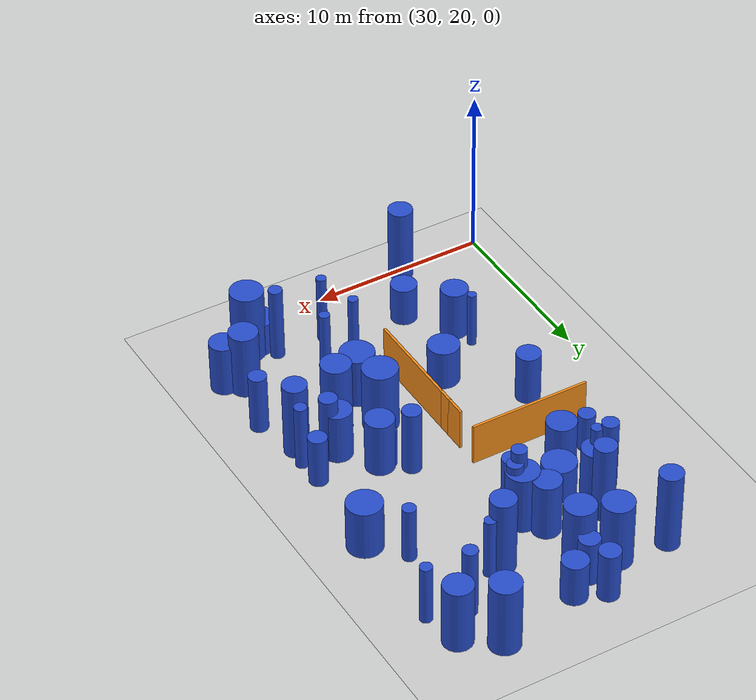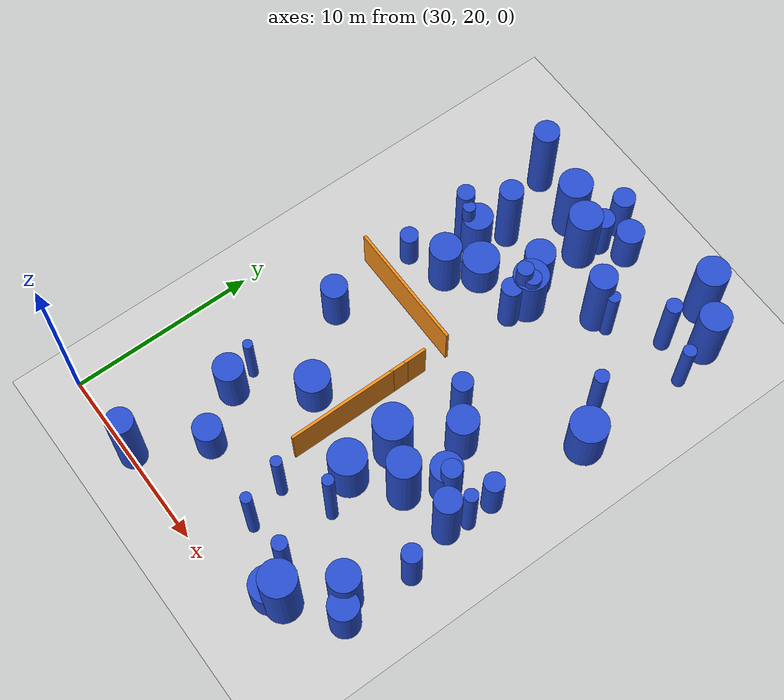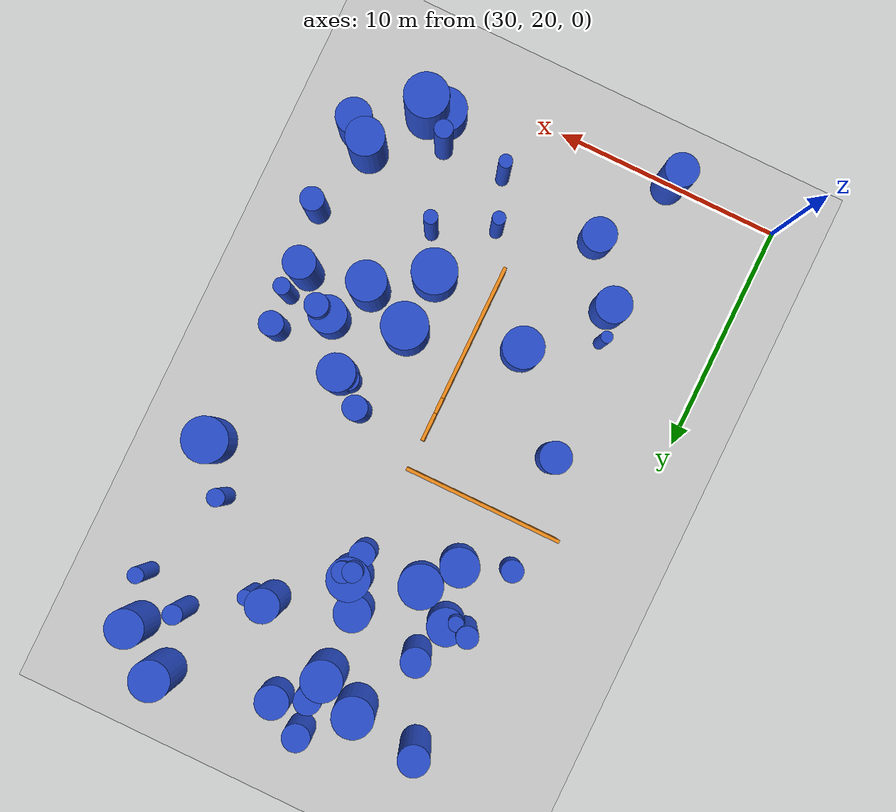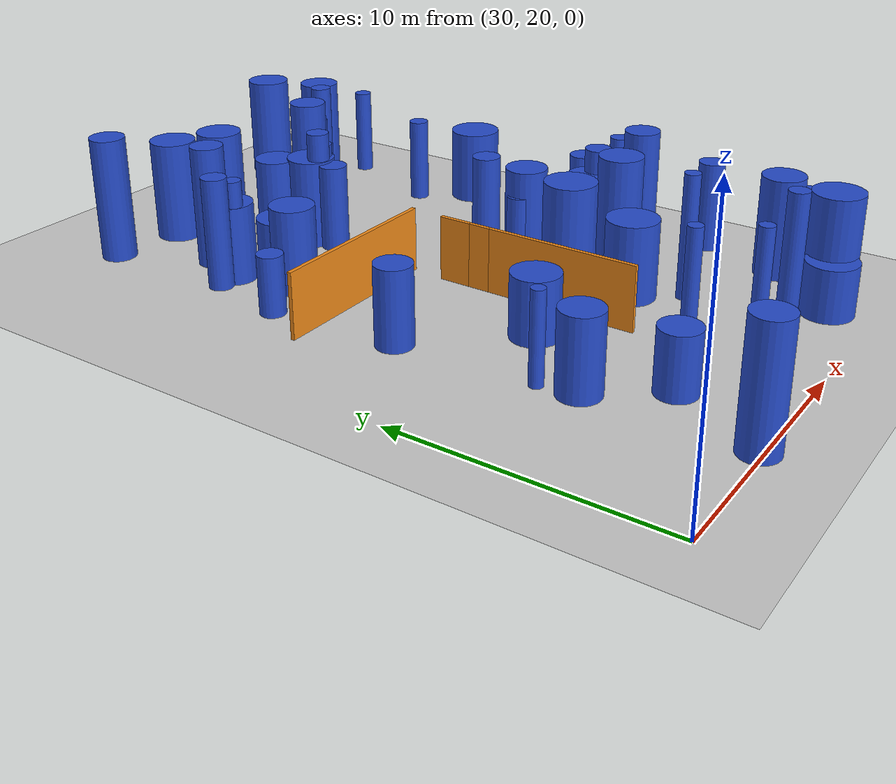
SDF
<sdf version="1.6">
 <world name="default">
  <model name="ground_plane">
   <static>1</static>
   <link name="link">
    <collision name="collision">
     <geometry><plane><normal>0 0 1</normal><size>100 100</size></plane></geometry>
     <surface><friction><ode><mu>100</mu><mu2>50</mu2></ode></friction></surface>
    </collision>
    <visual name="visual">
     <cast_shadows>0</cast_shadows>
     <geometry><plane><normal>0 0 1</normal><size>100 100</size></plane></geometry>
     <material>
      <script><uri>file://media/materials/scripts/gazebo.material</uri><name>Gazebo/Grey</name></script>
     </material>
    </visual>
   </link>
  </model>
  <model name="4">
   <static>0</static>
   <link name="link">
    <inertial>
     <mass>2</mass>
     <inertia>
      <ixx>0.982627</ixx>
      <ixy>0</ixy>
      <ixz>0</ixz>
      <iyy>0.982627</iyy>
      <iyz>0</iyz>
      <izz>0.248096</izz>
     </inertia>
    </inertial>
    <collision name="collision">
     <geometry><cylinder><length>2.26969</length><radius>0.498092</radius></cylinder></geometry>
     <surface><contact><collide_without_contact>1</collide_without_contact></contact></surface>
    </collision>
    <visual name="visual">
     <geometry><cylinder><length>2.26969</length><radius>0.498092</radius></cylinder></geometry>
     <material>
      <script><uri>file://media/materials/scripts/gazebo.material</uri><name>Gazebo/Blue</name></script>
     </material>
    </visual>
    <gravity>0</gravity>
   </link>
   <pose>43.5504 33.5469 1.13484 0 -0 0</pose>
  </model>
  <model name="7">
   <static>0</static>
   <link name="link">
    <inertial>
     <mass>2</mass>
     <inertia><ixx>3.06232</ixx><ixy>0</ixy><ixz>0</ixz><iyy>3.06232</iyy><iyz>0</iyz><izz>0.178257</izz></inertia>
    </inertial>
    <collision name="collision">
     <geometry><cylinder><length>4.22364</length><radius>0.422205</radius></cylinder></geometry>
     <surface><contact><collide_without_contact>1</collide_without_contact></contact></surface>
    </collision>
    <visual name="visual">
     <geometry><cylinder><length>4.22364</length><radius>0.422205</radius></cylinder></geometry>
     <material>
      <script><uri>file://media/materials/scripts/gazebo.material</uri><name>Gazebo/Blue</name></script>
     </material>
    </visual>
    <gravity>0</gravity>
   </link>
   <pose>45.6162 45.1561 2.11182 0 -0 0</pose>
  </model>
  <model name="17">
   <static>0</static>
   <link name="link">
    <inertial>
     <mass>2</mass>
     <inertia><ixx>4.11336</ixx><ixy>0</ixy><ixz>0</ixz><iyy>4.11336</iyy><iyz>0</iyz><izz>0.443854</izz></inertia>
    </inertial>
    <collision name="collision">
     <geometry><cylinder><length>4.83204</length><radius>0.666223</radius></cylinder></geometry>
     <surface><contact><collide_without_contact>1</collide_without_contact></contact></surface>
    </collision>
    <visual name="visual">
     <geometry><cylinder><length>4.83204</length><radius>0.666223</radius></cylinder></geometry>
     <material>
      <script><uri>file://media/materials/scripts/gazebo.material</uri><name>Gazebo/Blue</name></script>
     </material>
    </visual>
    <gravity>0</gravity>
   </link>
   <pose>34.3973 46.1199 2.41602 0 -0 0</pose>
  </model>
  <model name="19">
   <static>0</static>
   <link name="link">
    <inertial>
     <mass>2</mass>
     <inertia><ixx>1.7024</ixx><ixy>0</ixy><ixz>0</ixz><iyy>1.7024</iyy><iyz>0</iyz><izz>0.35835</izz></inertia>
    </inertial>
    <collision name="collision">
     <geometry><cylinder><length>3.02313</length><radius>0.598624</radius></cylinder></geometry>
     <surface><contact><collide_without_contact>1</collide_without_contact></contact></surface>
    </collision>
    <visual name="visual">
     <geometry><cylinder><length>3.02313</length><radius>0.598624</radius></cylinder></geometry>
     <material>
      <script><uri>file://media/materials/scripts/gazebo.material</uri><name>Gazebo/Blue</name></script>
     </material>
    </visual>
    <gravity>0</gravity>
   </link>
   <pose>39.0269 47.6818 1.51157 0 -0 0</pose>
  </model>
  <model name="22">
   <static>0</static>
   <link name="link">
    <inertial>
     <mass>2</mass>
     <inertia><ixx>1.74504</ixx><ixy>0</ixy><ixz>0</ixz><iyy>1.74504</iyy><iyz>0</iyz><izz>0.480682</izz></inertia>
    </inertial>
    <collision name="collision">
     <geometry><cylinder><length>3.00469</length><radius>0.693313</radius></cylinder></geometry>
     <surface><contact><collide_without_contact>1</collide_without_contact></contact></surface>
    </collision>
    <visual name="visual">
     <geometry><cylinder><length>3.00469</length><radius>0.693313</radius></cylinder></geometry>
     <material>
      <script><uri>file://media/materials/scripts/gazebo.material</uri><name>Gazebo/Blue</name></script>
     </material>
    </visual>
    <gravity>0</gravity>
   </link>
   <pose>34.3942 32.773 1.50235 0 -0 0</pose>
  </model>
  <model name="25">
   <static>0</static>
   <link name="link">
    <inertial>
     <mass>2</mass>
     <inertia><ixx>2.7316</ixx><ixy>0</ixy><ixz>0</ixz><iyy>2.7316</iyy><iyz>0</iyz><izz>0.105322</izz></inertia>
    </inertial>
    <collision name="collision">
     <geometry><cylinder><length>4.00919</length><radius>0.324534</radius></cylinder></geometry>
     <surface><contact><collide_without_contact>1</collide_without_contact></contact></surface>
    </collision>
    <visual name="visual">
     <geometry><cylinder><length>4.00919</length><radius>0.324534</radius></cylinder></geometry>
     <material>
      <script><uri>file://media/materials/scripts/gazebo.material</uri><name>Gazebo/Blue</name></script>
     </material>
    </visual>
    <gravity>0</gravity>
   </link>
   <pose>35.1952 40.577 2.0046 0 -0 0</pose>
  </model>
  <model name="27">
   <static>0</static>
   <link name="link">
    <inertial>
     <mass>2</mass>
     <inertia><ixx>3.49238</ixx><ixy>0</ixy><ixz>0</ixz><iyy>3.49238</iyy><iyz>0</iyz><izz>0.155393</izz></inertia>
    </inertial>
    <collision name="collision">
     <geometry><cylinder><length>4.52638</length><radius>0.394199</radius></cylinder></geometry>
     <surface><contact><collide_without_contact>1</collide_without_contact></contact></surface>
    </collision>
    <visual name="visual">
     <geometry><cylinder><length>4.52638</length><radius>0.394199</radius></cylinder></geometry>
     <material>
      <script><uri>file://media/materials/scripts/gazebo.material</uri><name>Gazebo/Blue</name></script>
     </material>
    </visual>
    <gravity>0</gravity>
   </link>
   <pose>44.2707 22.8518 2.26319 0 -0 0</pose>
  </model>
  <model name="31">
   <static>0</static>
   <link name="link">
    <inertial>
     <mass>2</mass>
     <inertia>
      <ixx>2.64859</ixx>
      <ixy>0</ixy>
      <ixz>0</ixz>
      <iyy>2.64859</iyy>
      <iyz>0</iyz>
      <izz>0.0843179</izz>
     </inertia>
    </inertial>
    <collision name="collision">
     <geometry><cylinder><length>3.95456</length><radius>0.290376</radius></cylinder></geometry>
     <surface><contact><collide_without_contact>1</collide_without_contact></contact></surface>
    </collision>
    <visual name="visual">
     <geometry><cylinder><length>3.95456</length><radius>0.290376</radius></cylinder></geometry>
     <material>
      <script><uri>file://media/materials/scripts/gazebo.material</uri><name>Gazebo/Blue</name></script>
     </material>
    </visual>
    <gravity>0</gravity>
   </link>
   <pose>40.7251 25.0415 1.97728 0 -0 0</pose>
  </model>
  <model name="32">
   <static>0</static>
   <link name="link">
    <inertial>
     <mass>2</mass>
     <inertia><ixx>1.31359</ixx><ixy>0</ixy><ixz>0</ixz><iyy>1.31359</iyy><iyz>0</iyz><izz>0.534164</izz></inertia>
    </inertial>
    <collision name="collision">
     <geometry><cylinder><length>2.5058</length><radius>0.730865</radius></cylinder></geometry>
     <surface><contact><collide_without_contact>1</collide_without_contact></contact></surface>
    </collision>
    <visual name="visual">
     <geometry><cylinder><length>2.5058</length><radius>0.730865</radius></cylinder></geometry>
     <material>
      <script><uri>file://media/materials/scripts/gazebo.material</uri><name>Gazebo/Blue</name></script>
     </material>
    </visual>
    <gravity>0</gravity>
   </link>
   <pose>40.5633 46.9048 1.2529 0 -0 0</pose>
  </model>
  <model name="38">
   <static>0</static>
   <link name="link">
    <inertial>
     <mass>2</mass>
     <inertia><ixx>1.64312</ixx><ixy>0</ixy><ixz>0</ixz><iyy>1.64312</iyy><iyz>0</iyz><izz>0.283464</izz></inertia>
    </inertial>
    <collision name="collision">
     <geometry><cylinder><length>3.00139</length><radius>0.532413</radius></cylinder></geometry>
     <surface><contact><collide_without_contact>1</collide_without_contact></contact></surface>
    </collision>
    <visual name="visual">
     <geometry><cylinder><length>3.00139</length><radius>0.532413</radius></cylinder></geometry>
     <material>
      <script><uri>file://media/materials/scripts/gazebo.material</uri><name>Gazebo/Blue</name></script>
     </material>
    </visual>
    <gravity>0</gravity>
   </link>
   <pose>47.3246 32.8651 1.50069 0 -0 0</pose>
  </model>
  <model name="41">
   <static>0</static>
   <link name="link">
    <inertial>
     <mass>2</mass>
     <inertia><ixx>2.97421</ixx><ixy>0</ixy><ixz>0</ixz><iyy>2.97421</iyy><iyz>0</iyz><izz>0.995933</izz></inertia>
    </inertial>
    <collision name="collision">
     <geometry><cylinder><length>3.85453</length><radius>0.997964</radius></cylinder></geometry>
     <surface><contact><collide_without_contact>1</collide_without_contact></contact></surface>
    </collision>
    <visual name="visual">
     <geometry><cylinder><length>3.85453</length><radius>0.997964</radius></cylinder></geometry>
     <material>
      <script><uri>file://media/materials/scripts/gazebo.material</uri><name>Gazebo/Blue</name></script>
     </material>
    </visual>
    <gravity>0</gravity>
   </link>
   <pose>42.2861 30.6272 1.92727 0 -0 0</pose>
  </model>
  <model name="42">
   <static>0</static>
   <link name="link">
    <inertial>
     <mass>2</mass>
     <inertia><ixx>3.1498</ixx><ixy>0</ixy><ixz>0</ixz><iyy>3.1498</iyy><iyz>0</iyz><izz>0.22395</izz></inertia>
    </inertial>
    <collision name="collision">
     <geometry><cylinder><length>4.26931</length><radius>0.473233</radius></cylinder></geometry>
     <surface><contact><collide_without_contact>1</collide_without_contact></contact></surface>
    </collision>
    <visual name="visual">
     <geometry><cylinder><length>4.26931</length><radius>0.473233</radius></cylinder></geometry>
     <material>
      <script><uri>file://media/materials/scripts/gazebo.material</uri><name>Gazebo/Blue</name></script>
     </material>
    </visual>
    <gravity>0</gravity>
   </link>
   <pose>34.5611 40.8487 2.13465 0 -0 0</pose>
  </model>
  <model name="45">
   <static>0</static>
   <link name="link">
    <inertial>
     <mass>2</mass>
     <inertia><ixx>2.26148</ixx><ixy>0</ixy><ixz>0</ixz><iyy>2.26148</iyy><iyz>0</iyz><izz>0.620996</izz></inertia>
    </inertial>
    <collision name="collision">
     <geometry><cylinder><length>3.42138</length><radius>0.788033</radius></cylinder></geometry>
     <surface><contact><collide_without_contact>1</collide_without_contact></contact></surface>
    </collision>
    <visual name="visual">
     <geometry><cylinder><length>3.42138</length><radius>0.788033</radius></cylinder></geometry>
     <material>
      <script><uri>file://media/materials/scripts/gazebo.material</uri><name>Gazebo/Blue</name></script>
     </material>
    </visual>
    <gravity>0</gravity>
   </link>
   <pose>39.1491 42.0776 1.71069 0 -0 0</pose>
  </model>
  <model name="54">
   <static>0</static>
   <link name="link">
    <inertial>
     <mass>2</mass>
     <inertia><ixx>1.37638</ixx><ixy>0</ixy><ixz>0</ixz><iyy>1.37638</iyy><iyz>0</iyz><izz>0.821688</izz></inertia>
    </inertial>
    <collision name="collision">
     <geometry><cylinder><length>2.40691</length><radius>0.90647</radius></cylinder></geometry>
     <surface><contact><collide_without_contact>1</collide_without_contact></contact></surface>
    </collision>
    <visual name="visual">
     <geometry><cylinder><length>2.40691</length><radius>0.90647</radius></cylinder></geometry>
     <material>
      <script><uri>file://media/materials/scripts/gazebo.material</uri><name>Gazebo/Blue</name></script>
     </material>
    </visual>
    <gravity>0</gravity>
   </link>
   <pose>37.5395 29.2145 1.20345 0 -0 0</pose>
  </model>
  <model name="56">
   <static>0</static>
   <link name="link">
    <inertial>
     <mass>2</mass>
     <inertia><ixx>1.44199</ixx><ixy>0</ixy><ixz>0</ixz><iyy>1.44199</iyy><iyz>0</iyz><izz>0.351917</izz></inertia>
    </inertial>
    <collision name="collision">
     <geometry><cylinder><length>2.75612</length><radius>0.593226</radius></cylinder></geometry>
     <surface><contact><collide_without_contact>1</collide_without_contact></contact></surface>
    </collision>
    <visual name="visual">
     <geometry><cylinder><length>2.75612</length><radius>0.593226</radius></cylinder></geometry>
     <material>
      <script><uri>file://media/materials/scripts/gazebo.material</uri><name>Gazebo/Blue</name></script>
     </material>
    </visual>
    <gravity>0</gravity>
   </link>
   <pose>39.2574 46.1786 1.37806 0 -0 0</pose>
  </model>
  <model name="61">
   <static>0</static>
   <link name="link">
    <inertial>
     <mass>2</mass>
     <inertia><ixx>3.67295</ixx><ixy>0</ixy><ixz>0</ixz><iyy>3.67295</iyy><iyz>0</iyz><izz>0.479823</izz></inertia>
    </inertial>
    <collision name="collision">
     <geometry><cylinder><length>4.53853</length><radius>0.692692</radius></cylinder></geometry>
     <surface><contact><collide_without_contact>1</collide_without_contact></contact></surface>
    </collision>
    <visual name="visual">
     <geometry><cylinder><length>4.53853</length><radius>0.692692</radius></cylinder></geometry>
     <material>
      <script><uri>file://media/materials/scripts/gazebo.material</uri><name>Gazebo/Blue</name></script>
     </material>
    </visual>
    <gravity>0</gravity>
   </link>
   <pose>47.1633 30.2094 2.26926 0 -0 0</pose>
  </model>
  <model name="62">
   <static>0</static>
   <link name="link">
    <inertial>
     <mass>2</mass>
     <inertia><ixx>1.99738</ixx><ixy>0</ixy><ixz>0</ixz><iyy>1.99738</iyy><iyz>0</iyz><izz>0.149019</izz></inertia>
    </inertial>
    <collision name="collision">
     <geometry><cylinder><length>3.39665</length><radius>0.38603</radius></cylinder></geometry>
     <surface><contact><collide_without_contact>1</collide_without_contact></contact></surface>
    </collision>
    <visual name="visual">
     <geometry><cylinder><length>3.39665</length><radius>0.38603</radius></cylinder></geometry>
     <material>
      <script><uri>file://media/materials/scripts/gazebo.material</uri><name>Gazebo/Blue</name></script>
     </material>
    </visual>
    <gravity>0</gravity>
   </link>
   <pose>46.2021 40.252 1.69832 0 -0 0</pose>
  </model>
  <model name="64">
   <static>0</static>
   <link name="link">
    <inertial>
     <mass>2</mass>
     <inertia><ixx>3.05171</ixx><ixy>0</ixy><ixz>0</ixz><iyy>3.05171</iyy><iyz>0</iyz><izz>0.774554</izz></inertia>
    </inertial>
    <collision name="collision">
     <geometry><cylinder><length>3.99833</length><radius>0.880087</radius></cylinder></geometry>
     <surface><contact><collide_without_contact>1</collide_without_contact></contact></surface>
    </collision>
    <visual name="visual">
     <geometry><cylinder><length>3.99833</length><radius>0.880087</radius></cylinder></geometry>
     <material>
      <script><uri>file://media/materials/scripts/gazebo.material</uri><name>Gazebo/Blue</name></script>
     </material>
    </visual>
    <gravity>0</gravity>
   </link>
   <pose>39.071 44.9999 1.99916 0 -0 0</pose>
  </model>
  <model name="70">
   <static>0</static>
   <link name="link">
    <inertial>
     <mass>2</mass>
     <inertia><ixx>3.66577</ixx><ixy>0</ixy><ixz>0</ixz><iyy>3.66577</iyy><iyz>0</iyz><izz>0.497393</izz></inertia>
    </inertial>
    <collision name="collision">
     <geometry><cylinder><length>4.52796</length><radius>0.705261</radius></cylinder></geometry>
     <surface><contact><collide_without_contact>1</collide_without_contact></contact></surface>
    </collision>
    <visual name="visual">
     <geometry><cylinder><length>4.52796</length><radius>0.705261</radius></cylinder></geometry>
     <material>
      <script><uri>file://media/materials/scripts/gazebo.material</uri><name>Gazebo/Blue</name></script>
     </material>
    </visual>
    <gravity>0</gravity>
   </link>
   <pose>34.9107 20.1823 2.26398 0 -0 0</pose>
  </model>
  <model name="76">
   <static>0</static>
   <link name="link">
    <inertial>
     <mass>2</mass>
     <inertia>
      <ixx>3.85305</ixx>
      <ixy>0</ixy>
      <ixz>0</ixz>
      <iyy>3.85305</iyy>
      <iyz>0</iyz>
      <izz>0.0917923</izz>
     </inertia>
    </inertial>
    <collision name="collision">
     <geometry><cylinder><length>4.77943</length><radius>0.302972</radius></cylinder></geometry>
     <surface><contact><collide_without_contact>1</collide_without_contact></contact></surface>
    </collision>
    <visual name="visual">
     <geometry><cylinder><length>4.77943</length><radius>0.302972</radius></cylinder></geometry>
     <material>
      <script><uri>file://media/materials/scripts/gazebo.material</uri><name>Gazebo/Blue</name></script>
     </material>
    </visual>
    <gravity>0</gravity>
   </link>
   <pose>43.1827 26.3124 2.38971 0 -0 0</pose>
  </model>
  <model name="80">
   <static>0</static>
   <link name="link">
    <inertial>
     <mass>2</mass>
     <inertia><ixx>3.9002</ixx><ixy>0</ixy><ixz>0</ixz><iyy>3.9002</iyy><iyz>0</iyz><izz>0.386485</izz></inertia>
    </inertial>
    <collision name="collision">
     <geometry><cylinder><length>4.71611</length><radius>0.621679</radius></cylinder></geometry>
     <surface><contact><collide_without_contact>1</collide_without_contact></contact></surface>
    </collision>
    <visual name="visual">
     <geometry><cylinder><length>4.71611</length><radius>0.621679</radius></cylinder></geometry>
     <material>
      <script><uri>file://media/materials/scripts/gazebo.material</uri><name>Gazebo/Blue</name></script>
     </material>
    </visual>
    <gravity>0</gravity>
   </link>
   <pose>36.0171 42.5943 2.35806 0 -0 0</pose>
  </model>
  <model name="83">
   <static>0</static>
   <link name="link">
    <inertial>
     <mass>2</mass>
     <inertia><ixx>1.1459</ixx><ixy>0</ixy><ixz>0</ixz><iyy>1.1459</iyy><iyz>0</iyz><izz>0.941021</izz></inertia>
    </inertial>
    <collision name="collision">
     <geometry><cylinder><length>2.01304</length><radius>0.970062</radius></cylinder></geometry>
     <surface><contact><collide_without_contact>1</collide_without_contact></contact></surface>
    </collision>
    <visual name="visual">
     <geometry><cylinder><length>2.01304</length><radius>0.970062</radius></cylinder></geometry>
     <material>
      <script><uri>file://media/materials/scripts/gazebo.material</uri><name>Gazebo/Blue</name></script>
     </material>
    </visual>
    <gravity>0</gravity>
   </link>
   <pose>44.8178 21.6069 1.00652 0 -0 0</pose>
  </model>
  <model name="84">
   <static>0</static>
   <link name="link">
    <inertial>
     <mass>2</mass>
     <inertia><ixx>1.19616</ixx><ixy>0</ixy><ixz>0</ixz><iyy>1.19616</iyy><iyz>0</iyz><izz>0.933302</izz></inertia>
    </inertial>
    <collision name="collision">
     <geometry><cylinder><length>2.09214</length><radius>0.966076</radius></cylinder></geometry>
     <surface><contact><collide_without_contact>1</collide_without_contact></contact></surface>
    </collision>
    <visual name="visual">
     <geometry><cylinder><length>2.09214</length><radius>0.966076</radius></cylinder></geometry>
     <material>
      <script><uri>file://media/materials/scripts/gazebo.material</uri><name>Gazebo/Blue</name></script>
     </material>
    </visual>
    <gravity>0</gravity>
   </link>
   <pose>37.0807 40.0005 1.04607 0 -0 0</pose>
  </model>
  <model name="86">
   <static>0</static>
   <link name="link">
    <inertial>
     <mass>2</mass>
     <inertia><ixx>3.85061</ixx><ixy>0</ixy><ixz>0</ixz><iyy>3.85061</iyy><iyz>0</iyz><izz>0.518978</izz></inertia>
    </inertial>
    <collision name="collision">
     <geometry><cylinder><length>4.64185</length><radius>0.720401</radius></cylinder></geometry>
     <surface><contact><collide_without_contact>1</collide_without_contact></contact></surface>
    </collision>
    <visual name="visual">
     <geometry><cylinder><length>4.64185</length><radius>0.720401</radius></cylinder></geometry>
     <material>
      <script><uri>file://media/materials/scripts/gazebo.material</uri><name>Gazebo/Blue</name></script>
     </material>
    </visual>
    <gravity>0</gravity>
   </link>
   <pose>42.5024 43.2263 2.32092 0 -0 0</pose>
  </model>
  <model name="95">
   <static>0</static>
   <link name="link">
    <inertial>
     <mass>2</mass>
     <inertia>
      <ixx>0.985771</ixx>
      <ixy>0</ixy>
      <ixz>0</ixz>
      <iyy>0.985771</iyy>
      <iyz>0</iyz>
      <izz>0.233893</izz>
     </inertia>
    </inertial>
    <collision name="collision">
     <geometry><cylinder><length>2.28319</length><radius>0.483625</radius></cylinder></geometry>
     <surface><contact><collide_without_contact>1</collide_without_contact></contact></surface>
    </collision>
    <visual name="visual">
     <geometry><cylinder><length>2.28319</length><radius>0.483625</radius></cylinder></geometry>
     <material>
      <script><uri>file://media/materials/scripts/gazebo.material</uri><name>Gazebo/Blue</name></script>
     </material>
    </visual>
    <gravity>0</gravity>
   </link>
   <pose>33.9366 37.7681 1.14159 0 -0 0</pose>
  </model>
  <model name="97">
   <static>0</static>
   <link name="link">
    <inertial>
     <mass>2</mass>
     <inertia><ixx>1.88861</ixx><ixy>0</ixy><ixz>0</ixz><iyy>1.88861</iyy><iyz>0</iyz><izz>0.605954</izz></inertia>
    </inertial>
    <collision name="collision">
     <geometry><cylinder><length>3.08444</length><radius>0.778431</radius></cylinder></geometry>
     <surface><contact><collide_without_contact>1</collide_without_contact></contact></surface>
    </collision>
    <visual name="visual">
     <geometry><cylinder><length>3.08444</length><radius>0.778431</radius></cylinder></geometry>
     <material>
      <script><uri>file://media/materials/scripts/gazebo.material</uri><name>Gazebo/Blue</name></script>
     </material>
    </visual>
    <gravity>0</gravity>
   </link>
   <pose>47.974 23.6926 1.54222 0 -0 0</pose>
  </model>
  <model name="98">
   <static>0</static>
   <link name="link">
    <inertial>
     <mass>2</mass>
     <inertia><ixx>1.86574</ixx><ixy>0</ixy><ixz>0</ixz><iyy>1.86574</iyy><iyz>0</iyz><izz>0.667431</izz></inertia>
    </inertial>
    <collision name="collision">
     <geometry><cylinder><length>3.03186</length><radius>0.816965</radius></cylinder></geometry>
     <surface><contact><collide_without_contact>1</collide_without_contact></contact></surface>
    </collision>
    <visual name="visual">
     <geometry><cylinder><length>3.03186</length><radius>0.816965</radius></cylinder></geometry>
     <material>
      <script><uri>file://media/materials/scripts/gazebo.material</uri><name>Gazebo/Blue</name></script>
     </material>
    </visual>
    <gravity>0</gravity>
   </link>
   <pose>45.397 31.5197 1.51593 0 -0 0</pose>
  </model>
  <model name="105">
   <static>0</static>
   <link name="link">
    <inertial>
     <mass>2</mass>
     <inertia><ixx>2.88866</ixx><ixy>0</ixy><ixz>0</ixz><iyy>2.88866</iyy><iyz>0</iyz><izz>0.686861</izz></inertia>
    </inertial>
    <collision name="collision">
     <geometry><cylinder><length>3.90786</length><radius>0.828771</radius></cylinder></geometry>
     <surface><contact><collide_without_contact>1</collide_without_contact></contact></surface>
    </collision>
    <visual name="visual">
     <geometry><cylinder><length>3.90786</length><radius>0.828771</radius></cylinder></geometry>
     <material>
      <script><uri>file://media/materials/scripts/gazebo.material</uri><name>Gazebo/Blue</name></script>
     </material>
    </visual>
    <gravity>0</gravity>
   </link>
   <pose>47.0756 24.3872 1.95393 0 -0 0</pose>
  </model>
  <model name="106">
   <static>0</static>
   <link name="link">
    <inertial>
     <mass>2</mass>
     <inertia><ixx>2.19954</ixx><ixy>0</ixy><ixz>0</ixz><iyy>2.19954</iyy><iyz>0</iyz><izz>0.11993</izz></inertia>
    </inertial>
    <collision name="collision">
     <geometry><cylinder><length>3.58294</length><radius>0.346309</radius></cylinder></geometry>
     <surface><contact><collide_without_contact>1</collide_without_contact></contact></surface>
    </collision>
    <visual name="visual">
     <geometry><cylinder><length>3.58294</length><radius>0.346309</radius></cylinder></geometry>
     <material>
      <script><uri>file://media/materials/scripts/gazebo.material</uri><name>Gazebo/Blue</name></script>
     </material>
    </visual>
    <gravity>0</gravity>
   </link>
   <pose>47.7338 44.4726 1.79147 0 -0 0</pose>
  </model>
  <model name="110">
   <static>0</static>
   <link name="link">
    <inertial>
     <mass>2</mass>
     <inertia><ixx>2.75029</ixx><ixy>0</ixy><ixz>0</ixz><iyy>2.75029</iyy><iyz>0</iyz><izz>0.287407</izz></inertia>
    </inertial>
    <collision name="collision">
     <geometry><cylinder><length>3.95468</length><radius>0.536104</radius></cylinder></geometry>
     <surface><contact><collide_without_contact>1</collide_without_contact></contact></surface>
    </collision>
    <visual name="visual">
     <geometry><cylinder><length>3.95468</length><radius>0.536104</radius></cylinder></geometry>
     <material>
      <script><uri>file://media/materials/scripts/gazebo.material</uri><name>Gazebo/Blue</name></script>
     </material>
    </visual>
    <gravity>0</gravity>
   </link>
   <pose>42.6495 34.504 1.97734 0 -0 0</pose>
  </model>
  <model name="114">
   <static>0</static>
   <link name="link">
    <inertial>
     <mass>2</mass>
     <inertia><ixx>2.29436</ixx><ixy>0</ixy><ixz>0</ixz><iyy>2.29436</iyy><iyz>0</iyz><izz>0.108501</izz></inertia>
    </inertial>
    <collision name="collision">
     <geometry><cylinder><length>3.66615</length><radius>0.329394</radius></cylinder></geometry>
     <surface><contact><collide_without_contact>1</collide_without_contact></contact></surface>
    </collision>
    <visual name="visual">
     <geometry><cylinder><length>3.66615</length><radius>0.329394</radius></cylinder></geometry>
     <material>
      <script><uri>file://media/materials/scripts/gazebo.material</uri><name>Gazebo/Blue</name></script>
     </material>
    </visual>
    <gravity>0</gravity>
   </link>
   <pose>43.338 43.3503 1.83308 0 -0 0</pose>
  </model>
  <model name="119">
   <static>0</static>
   <link name="link">
    <inertial>
     <mass>2</mass>
     <inertia><ixx>1.78265</ixx><ixy>0</ixy><ixz>0</ixz><iyy>1.78265</iyy><iyz>0</iyz><izz>0.442677</izz></inertia>
    </inertial>
    <collision name="collision">
     <geometry><cylinder><length>3.0607</length><radius>0.66534</radius></cylinder></geometry>
     <surface><contact><collide_without_contact>1</collide_without_contact></contact></surface>
    </collision>
    <visual name="visual">
     <geometry><cylinder><length>3.0607</length><radius>0.66534</radius></cylinder></geometry>
     <material>
      <script><uri>file://media/materials/scripts/gazebo.material</uri><name>Gazebo/Blue</name></script>
     </material>
    </visual>
    <gravity>0</gravity>
   </link>
   <pose>44.3315 29.6347 1.53035 0 -0 0</pose>
  </model>
  <model name="128">
   <static>0</static>
   <link name="link">
    <inertial>
     <mass>2</mass>
     <inertia><ixx>3.56373</ixx><ixy>0</ixy><ixz>0</ixz><iyy>3.56373</iyy><iyz>0</iyz><izz>0.183806</izz></inertia>
    </inertial>
    <collision name="collision">
     <geometry><cylinder><length>4.56409</length><radius>0.428726</radius></cylinder></geometry>
     <surface><contact><collide_without_contact>1</collide_without_contact></contact></surface>
    </collision>
    <visual name="visual">
     <geometry><cylinder><length>4.56409</length><radius>0.428726</radius></cylinder></geometry>
     <material>
      <script><uri>file://media/materials/scripts/gazebo.material</uri><name>Gazebo/Blue</name></script>
     </material>
    </visual>
    <gravity>0</gravity>
   </link>
   <pose>39.8452 40.467 2.28205 0 -0 0</pose>
  </model>
  <model name="130">
   <static>0</static>
   <link name="link">
    <inertial>
     <mass>2</mass>
     <inertia><ixx>2.81294</ixx><ixy>0</ixy><ixz>0</ixz><iyy>2.81294</iyy><iyz>0</iyz><izz>0.682512</izz></inertia>
    </inertial>
    <collision name="collision">
     <geometry><cylinder><length>3.85099</length><radius>0.826143</radius></cylinder></geometry>
     <surface><contact><collide_without_contact>1</collide_without_contact></contact></surface>
    </collision>
    <visual name="visual">
     <geometry><cylinder><length>3.85099</length><radius>0.826143</radius></cylinder></geometry>
     <material>
      <script><uri>file://media/materials/scripts/gazebo.material</uri><name>Gazebo/Blue</name></script>
     </material>
    </visual>
    <gravity>0</gravity>
   </link>
   <pose>47.1678 46.577 1.92549 0 -0 0</pose>
  </model>
  <model name="141">
   <static>0</static>
   <link name="link">
    <inertial>
     <mass>2</mass>
     <inertia><ixx>3.32043</ixx><ixy>0</ixy><ixz>0</ixz><iyy>3.32043</iyy><iyz>0</iyz><izz>0.743493</izz></inertia>
    </inertial>
    <collision name="collision">
     <geometry><cylinder><length>4.2062</length><radius>0.86226</radius></cylinder></geometry>
     <surface><contact><collide_without_contact>1</collide_without_contact></contact></surface>
    </collision>
    <visual name="visual">
     <geometry><cylinder><length>4.2062</length><radius>0.86226</radius></cylinder></geometry>
     <material>
      <script><uri>file://media/materials/scripts/gazebo.material</uri><name>Gazebo/Blue</name></script>
     </material>
    </visual>
    <gravity>0</gravity>
   </link>
   <pose>45.3041 47.9549 2.1031 0 -0 0</pose>
  </model>
  <model name="143">
   <static>0</static>
   <link name="link">
    <inertial>
     <mass>2</mass>
     <inertia><ixx>3.53239</ixx><ixy>0</ixy><ixz>0</ixz><iyy>3.53239</iyy><iyz>0</iyz><izz>0.90512</izz></inertia>
    </inertial>
    <collision name="collision">
     <geometry><cylinder><length>4.29872</length><radius>0.951378</radius></cylinder></geometry>
     <surface><contact><collide_without_contact>1</collide_without_contact></contact></surface>
    </collision>
    <visual name="visual">
     <geometry><cylinder><length>4.29872</length><radius>0.951378</radius></cylinder></geometry>
     <material>
      <script><uri>file://media/materials/scripts/gazebo.material</uri><name>Gazebo/Blue</name></script>
     </material>
    </visual>
    <gravity>0</gravity>
   </link>
   <pose>45.5094 21.8679 2.14936 0 -0 0</pose>
  </model>
  <model name="145">
   <static>0</static>
   <link name="link">
    <inertial>
     <mass>2</mass>
     <inertia><ixx>2.22804</ixx><ixy>0</ixy><ixz>0</ixz><iyy>2.22804</iyy><iyz>0</iyz><izz>0.260787</izz></inertia>
    </inertial>
    <collision name="collision">
     <geometry><cylinder><length>3.54766</length><radius>0.510673</radius></cylinder></geometry>
     <surface><contact><collide_without_contact>1</collide_without_contact></contact></surface>
    </collision>
    <visual name="visual">
     <geometry><cylinder><length>3.54766</length><radius>0.510673</radius></cylinder></geometry>
     <material>
      <script><uri>file://media/materials/scripts/gazebo.material</uri><name>Gazebo/Blue</name></script>
     </material>
    </visual>
    <gravity>0</gravity>
   </link>
   <pose>47.96 27.5717 1.77383 0 -0 0</pose>
  </model>
  <model name="155">
   <static>0</static>
   <link name="link">
    <inertial>
     <mass>2</mass>
     <inertia><ixx>2.14576</ixx><ixy>0</ixy><ixz>0</ixz><iyy>2.14576</iyy><iyz>0</iyz><izz>0.670483</izz></inertia>
    </inertial>
    <collision name="collision">
     <geometry><cylinder><length>3.29592</length><radius>0.81883</radius></cylinder></geometry>
     <surface><contact><collide_without_contact>1</collide_without_contact></contact></surface>
    </collision>
    <visual name="visual">
     <geometry><cylinder><length>3.29592</length><radius>0.81883</radius></cylinder></geometry>
     <material>
      <script><uri>file://media/materials/scripts/gazebo.material</uri><name>Gazebo/Blue</name></script>
     </material>
    </visual>
    <gravity>0</gravity>
   </link>
   <pose>44.0083 33.5307 1.64796 0 -0 0</pose>
  </model>
  <model name="160">
   <static>0</static>
   <link name="link">
    <inertial>
     <mass>2</mass>
     <inertia><ixx>2.44797</ixx><ixy>0</ixy><ixz>0</ixz><iyy>2.44797</iyy><iyz>0</iyz><izz>0.847195</izz></inertia>
    </inertial>
    <collision name="collision">
     <geometry><cylinder><length>3.48514</length><radius>0.920432</radius></cylinder></geometry>
     <surface><contact><collide_without_contact>1</collide_without_contact></contact></surface>
    </collision>
    <visual name="visual">
     <geometry><cylinder><length>3.48514</length><radius>0.920432</radius></cylinder></geometry>
     <material>
      <script><uri>file://media/materials/scripts/gazebo.material</uri><name>Gazebo/Blue</name></script>
     </material>
    </visual>
    <gravity>0</gravity>
   </link>
   <pose>39.8909 40.9021 1.74257 0 -0 0</pose>
  </model>
  <model name="176">
   <static>0</static>
   <link name="link">
    <inertial>
     <mass>2</mass>
     <inertia>
      <ixx>2.98253</ixx>
      <ixy>0</ixy>
      <ixz>0</ixz>
      <iyy>2.98253</iyy>
      <iyz>0</iyz>
      <izz>0.0840111</izz>
     </inertia>
    </inertial>
    <collision name="collision">
     <geometry><cylinder><length>4.20037</length><radius>0.289847</radius></cylinder></geometry>
     <surface><contact><collide_without_contact>1</collide_without_contact></contact></surface>
    </collision>
    <visual name="visual">
     <geometry><cylinder><length>4.20037</length><radius>0.289847</radius></cylinder></geometry>
     <material>
      <script><uri>file://media/materials/scripts/gazebo.material</uri><name>Gazebo/Blue</name></script>
     </material>
    </visual>
    <gravity>0</gravity>
   </link>
   <pose>41.4695 22.8807 2.10019 0 -0 0</pose>
  </model>
  <model name="180">
   <static>0</static>
   <link name="link">
    <inertial>
     <mass>2</mass>
     <inertia><ixx>1.81639</ixx><ixy>0</ixy><ixz>0</ixz><iyy>1.81639</iyy><iyz>0</iyz><izz>0.617239</izz></inertia>
    </inertial>
    <collision name="collision">
     <geometry><cylinder><length>3.00776</length><radius>0.785645</radius></cylinder></geometry>
     <surface><contact><collide_without_contact>1</collide_without_contact></contact></surface>
    </collision>
    <visual name="visual">
     <geometry><cylinder><length>3.00776</length><radius>0.785645</radius></cylinder></geometry>
     <material>
      <script><uri>file://media/materials/scripts/gazebo.material</uri><name>Gazebo/Blue</name></script>
     </material>
    </visual>
    <gravity>0</gravity>
   </link>
   <pose>34.9553 26.0662 1.50388 0 -0 0</pose>
  </model>
  <model name="188">
   <static>0</static>
   <link name="link">
    <inertial>
     <mass>2</mass>
     <inertia><ixx>3.04092</ixx><ixy>0</ixy><ixz>0</ixz><iyy>3.04092</iyy><iyz>0</iyz><izz>0.786002</izz></inertia>
    </inertial>
    <collision name="collision">
     <geometry><cylinder><length>3.98592</length><radius>0.886567</radius></cylinder></geometry>
     <surface><contact><collide_without_contact>1</collide_without_contact></contact></surface>
    </collision>
    <visual name="visual">
     <geometry><cylinder><length>3.98592</length><radius>0.886567</radius></cylinder></geometry>
     <material>
      <script><uri>file://media/materials/scripts/gazebo.material</uri><name>Gazebo/Blue</name></script>
     </material>
    </visual>
    <gravity>0</gravity>
   </link>
   <pose>37.3091 45.7782 1.99296 0 -0 0</pose>
  </model>
  <model name="189">
   <static>0</static>
   <link name="link">
    <inertial>
     <mass>2</mass>
     <inertia><ixx>2.71953</ixx><ixy>0</ixy><ixz>0</ixz><iyy>2.71953</iyy><iyz>0</iyz><izz>0.207124</izz></inertia>
    </inertial>
    <collision name="collision">
     <geometry><cylinder><length>3.96179</length><radius>0.455108</radius></cylinder></geometry>
     <surface><contact><collide_without_contact>1</collide_without_contact></contact></surface>
    </collision>
    <visual name="visual">
     <geometry><cylinder><length>3.96179</length><radius>0.455108</radius></cylinder></geometry>
     <material>
      <script><uri>file://media/materials/scripts/gazebo.material</uri><name>Gazebo/Blue</name></script>
     </material>
    </visual>
    <gravity>0</gravity>
   </link>
   <pose>40.2209 40.6926 1.9809 0 -0 0</pose>
  </model>
  <model name="207">
   <static>0</static>
   <link name="link">
    <inertial>
     <mass>2</mass>
     <inertia><ixx>1.96965</ixx><ixy>0</ixy><ixz>0</ixz><iyy>1.96965</iyy><iyz>0</iyz><izz>0.066463</izz></inertia>
    </inertial>
    <collision name="collision">
     <geometry><cylinder><length>3.40859</length><radius>0.257804</radius></cylinder></geometry>
     <surface><contact><collide_without_contact>1</collide_without_contact></contact></surface>
    </collision>
    <visual name="visual">
     <geometry><cylinder><length>3.40859</length><radius>0.257804</radius></cylinder></geometry>
     <material>
      <script><uri>file://media/materials/scripts/gazebo.material</uri><name>Gazebo/Blue</name></script>
     </material>
    </visual>
    <gravity>0</gravity>
   </link>
   <pose>34.6715 27.4456 1.7043 0 -0 0</pose>
  </model>
  <model name="212">
   <static>0</static>
   <link name="link">
    <inertial>
     <mass>2</mass>
     <inertia><ixx>2.06459</ixx><ixy>0</ixy><ixz>0</ixz><iyy>2.06459</iyy><iyz>0</iyz><izz>0.294877</izz></inertia>
    </inertial>
    <collision name="collision">
     <geometry><cylinder><length>3.3916</length><radius>0.543026</radius></cylinder></geometry>
     <surface><contact><collide_without_contact>1</collide_without_contact></contact></surface>
    </collision>
    <visual name="visual">
     <geometry><cylinder><length>3.3916</length><radius>0.543026</radius></cylinder></geometry>
     <material>
      <script><uri>file://media/materials/scripts/gazebo.material</uri><name>Gazebo/Blue</name></script>
     </material>
    </visual>
    <gravity>0</gravity>
   </link>
   <pose>39.8224 39.7475 1.6958 0 -0 0</pose>
  </model>
  <model name="217">
   <static>0</static>
   <link name="link">
    <inertial>
     <mass>2</mass>
     <inertia><ixx>1.95959</ixx><ixy>0</ixy><ixz>0</ixz><iyy>1.95959</iyy><iyz>0</iyz><izz>0.990293</izz></inertia>
    </inertial>
    <collision name="collision">
     <geometry><cylinder><length>2.96423</length><radius>0.995135</radius></cylinder></geometry>
     <surface><contact><collide_without_contact>1</collide_without_contact></contact></surface>
    </collision>
    <visual name="visual">
     <geometry><cylinder><length>2.96423</length><radius>0.995135</radius></cylinder></geometry>
     <material>
      <script><uri>file://media/materials/scripts/gazebo.material</uri><name>Gazebo/Blue</name></script>
     </material>
    </visual>
    <gravity>0</gravity>
   </link>
   <pose>47.697 38.3504 1.48211 0 -0 0</pose>
  </model>
  <model name="218">
   <static>0</static>
   <link name="link">
    <inertial>
     <mass>2</mass>
     <inertia><ixx>2.73257</ixx><ixy>0</ixy><ixz>0</ixz><iyy>2.73257</iyy><iyz>0</iyz><izz>0.265062</izz></inertia>
    </inertial>
    <collision name="collision">
     <geometry><cylinder><length>3.94971</length><radius>0.514842</radius></cylinder></geometry>
     <surface><contact><collide_without_contact>1</collide_without_contact></contact></surface>
    </collision>
    <visual name="visual">
     <geometry><cylinder><length>3.94971</length><radius>0.514842</radius></cylinder></geometry>
     <material>
      <script><uri>file://media/materials/scripts/gazebo.material</uri><name>Gazebo/Blue</name></script>
     </material>
    </visual>
    <gravity>0</gravity>
   </link>
   <pose>45.8644 31.4262 1.97486 0 -0 0</pose>
  </model>
  <model name="219">
   <static>0</static>
   <link name="link">
    <inertial>
     <mass>2</mass>
     <inertia><ixx>2.01383</ixx><ixy>0</ixy><ixz>0</ixz><iyy>2.01383</iyy><iyz>0</iyz><izz>0.96174</izz></inertia>
    </inertial>
    <collision name="collision">
     <geometry><cylinder><length>3.03278</length><radius>0.980683</radius></cylinder></geometry>
     <surface><contact><collide_without_contact>1</collide_without_contact></contact></surface>
    </collision>
    <visual name="visual">
     <geometry><cylinder><length>3.03278</length><radius>0.980683</radius></cylinder></geometry>
     <material>
      <script><uri>file://media/materials/scripts/gazebo.material</uri><name>Gazebo/Blue</name></script>
     </material>
    </visual>
    <gravity>0</gravity>
   </link>
   <pose>42.2009 28.0218 1.51639 0 -0 0</pose>
  </model>
  <model name="221">
   <static>0</static>
   <link name="link">
    <inertial>
     <mass>2</mass>
     <inertia><ixx>1.18725</ixx><ixy>0</ixy><ixz>0</ixz><iyy>1.18725</iyy><iyz>0</iyz><izz>0.565882</izz></inertia>
    </inertial>
    <collision name="collision">
     <geometry><cylinder><length>2.32934</length><radius>0.752251</radius></cylinder></geometry>
     <surface><contact><collide_without_contact>1</collide_without_contact></contact></surface>
    </collision>
    <visual name="visual">
     <geometry><cylinder><length>2.32934</length><radius>0.752251</radius></cylinder></geometry>
     <material>
      <script><uri>file://media/materials/scripts/gazebo.material</uri><name>Gazebo/Blue</name></script>
     </material>
    </visual>
    <gravity>0</gravity>
   </link>
   <pose>36.7152 23.5989 1.16467 0 -0 0</pose>
  </model>
  <model name="224">
   <static>0</static>
   <link name="link">
    <inertial>
     <mass>2</mass>
     <inertia><ixx>2.1143</ixx><ixy>0</ixy><ixz>0</ixz><iyy>2.1143</iyy><iyz>0</iyz><izz>0.699634</izz></inertia>
    </inertial>
    <collision name="collision">
     <geometry><cylinder><length>3.25375</length><radius>0.836441</radius></cylinder></geometry>
     <surface><contact><collide_without_contact>1</collide_without_contact></contact></surface>
    </collision>
    <visual name="visual">
     <geometry><cylinder><length>3.25375</length><radius>0.836441</radius></cylinder></geometry>
     <material>
      <script><uri>file://media/materials/scripts/gazebo.material</uri><name>Gazebo/Blue</name></script>
     </material>
    </visual>
    <gravity>0</gravity>
   </link>
   <pose>36.009 38.5127 1.62688 0 -0 0</pose>
  </model>
  <model name="236">
   <static>0</static>
   <link name="link">
    <inertial>
     <mass>2</mass>
     <inertia><ixx>1.83993</ixx><ixy>0</ixy><ixz>0</ixz><iyy>1.83993</iyy><iyz>0</iyz><izz>0.652607</izz></inertia>
    </inertial>
    <collision name="collision">
     <geometry><cylinder><length>3.0136</length><radius>0.807841</radius></cylinder></geometry>
     <surface><contact><collide_without_contact>1</collide_without_contact></contact></surface>
    </collision>
    <visual name="visual">
     <geometry><cylinder><length>3.0136</length><radius>0.807841</radius></cylinder></geometry>
     <material>
      <script><uri>file://media/materials/scripts/gazebo.material</uri><name>Gazebo/Blue</name></script>
     </material>
    </visual>
    <gravity>0</gravity>
   </link>
   <pose>35.459 40.965 1.5068 0 -0 0</pose>
  </model>
  <model name="242">
   <static>0</static>
   <link name="link">
    <inertial>
     <mass>2</mass>
     <inertia><ixx>3.59243</ixx><ixy>0</ixy><ixz>0</ixz><iyy>3.59243</iyy><iyz>0</iyz><izz>0.726061</izz></inertia>
    </inertial>
    <collision name="collision">
     <geometry><cylinder><length>4.40186</length><radius>0.852092</radius></cylinder></geometry>
     <surface><contact><collide_without_contact>1</collide_without_contact></contact></surface>
    </collision>
    <visual name="visual">
     <geometry><cylinder><length>4.40186</length><radius>0.852092</radius></cylinder></geometry>
     <material>
      <script><uri>file://media/materials/scripts/gazebo.material</uri><name>Gazebo/Blue</name></script>
     </material>
    </visual>
    <gravity>0</gravity>
   </link>
   <pose>44.4245 29.7088 2.20093 0 -0 0</pose>
  </model>
  <model name="248">
   <static>0</static>
   <link name="link">
    <inertial>
     <mass>2</mass>
     <inertia><ixx>2.70177</ixx><ixy>0</ixy><ixz>0</ixz><iyy>2.70177</iyy><iyz>0</iyz><izz>0.130531</izz></inertia>
    </inertial>
    <collision name="collision">
     <geometry><cylinder><length>3.97731</length><radius>0.36129</radius></cylinder></geometry>
     <surface><contact><collide_without_contact>1</collide_without_contact></contact></surface>
    </collision>
    <visual name="visual">
     <geometry><cylinder><length>3.97731</length><radius>0.36129</radius></cylinder></geometry>
     <material>
      <script><uri>file://media/materials/scripts/gazebo.material</uri><name>Gazebo/Blue</name></script>
     </material>
    </visual>
    <gravity>0</gravity>
   </link>
   <pose>47.4611 31.3452 1.98866 0 -0 0</pose>
  </model>
  <model name="wall_0_clone_2">
   <pose>36.242 31.2323 0 0 -0 0</pose>
   <link name="Wall_10">
    <collision name="Wall_10_Collision">
     <geometry><box><size>1 0.15 2.5</size></box></geometry>
     <pose>0 0 1.25 0 -0 0</pose>
    </collision>
    <visual name="Wall_10_Visual">
     <pose>0 0 1.25 0 -0 0</pose>
     <geometry><box><size>1 0.15 2.5</size></box></geometry>
     <material>
      <script><uri>file://media/materials/scripts/gazebo.material</uri><name>Gazebo/Orange</name></script>
      <ambient>1 1 1 1</ambient>
     </material>
     <meta><layer>0</layer></meta>
    </visual>
    <pose>3.41104 1.67587 0 0 -0 -1.5708</pose>
   </link>
   <link name="Wall_11">
    <collision name="Wall_11_Collision">
     <geometry><box><size>6 0.15 2.5</size></box></geometry>
     <pose>0 0 1.25 0 -0 0</pose>
    </collision>
    <visual name="Wall_11_Visual">
     <pose>0 0 1.25 0 -0 0</pose>
     <geometry><box><size>6 0.15 2.5</size></box></geometry>
     <material>
      <script><uri>file://media/materials/scripts/gazebo.material</uri><name>Gazebo/Orange</name></script>
      <ambient>1 1 1 1</ambient>
     </material>
     <meta><layer>0</layer></meta>
    </visual>
    <pose>3.41104 -1.67413 0 0 -0 -1.5708</pose>
   </link>
   <link name="Wall_6">
    <collision name="Wall_6_Collision">
     <geometry><box><size>7 0.15 2.5</size></box></geometry>
     <pose>0 0 1.25 0 -0 0</pose>
    </collision>
    <visual name="Wall_6_Visual">
     <pose>0 0 1.25 0 -0 0</pose>
     <geometry><box><size>7 0.15 2.5</size></box></geometry>
     <material>
      <script><uri>file://media/materials/scripts/gazebo.material</uri><name>Gazebo/Orange</name></script>
      <ambient>1 1 1 1</ambient>
     </material>
     <meta><layer>0</layer></meta>
    </visual>
    <pose>-0 4.59914 0 0 -0 0</pose>
   </link>
   <link name="Wall_9">
    <collision name="Wall_9_Collision">
     <geometry><box><size>1.25 0.15 2.5</size></box></geometry>
     <pose>0 0 1.25 0 -0 0</pose>
    </collision>
    <visual name="Wall_9_Visual">
     <pose>0 0 1.25 0 -0 0</pose>
     <geometry><box><size>1.25 0.15 2.5</size></box></geometry>
     <material>
      <script><uri>file://media/materials/scripts/gazebo.material</uri><name>Gazebo/Orange</name></script>
      <ambient>1 1 1 1</ambient>
     </material>
     <meta><layer>0</layer></meta>
    </visual>
    <pose>3.41104 2.65087 0 0 -0 -1.5708</pose>
   </link>
   <static>1</static>
  </model>
 </world>
</sdf>
